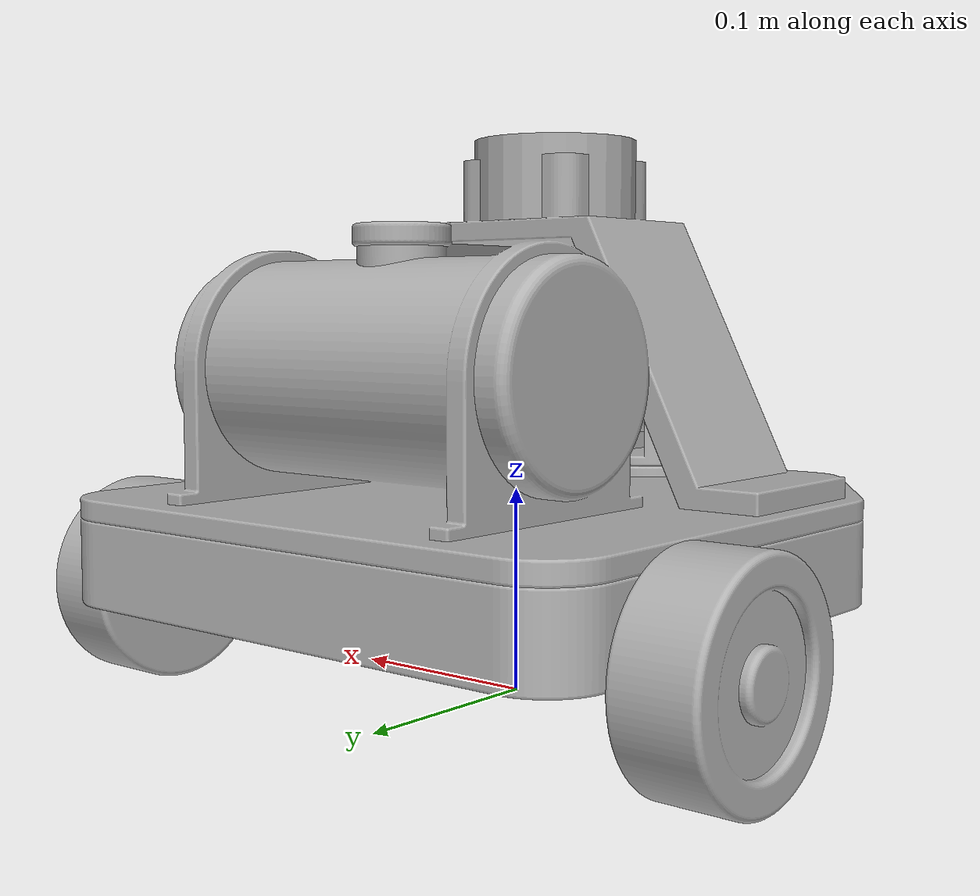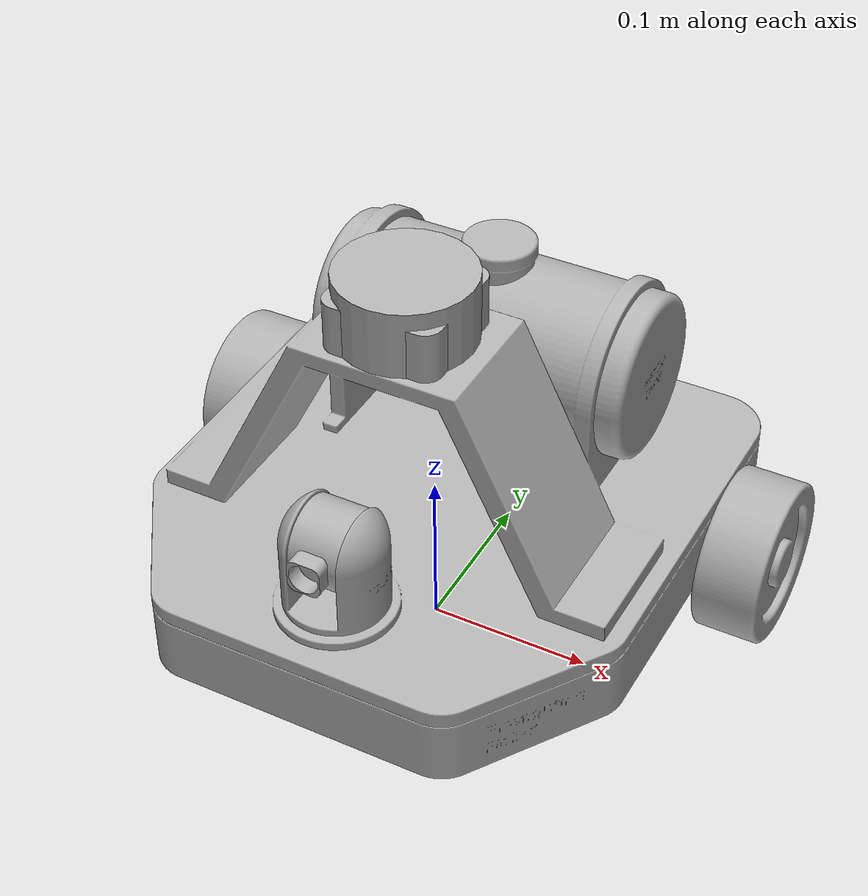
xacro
<?xml version="1.0" ?>
<robot name="final_assembly" xmlns:xacro="http://www.ros.org/wiki/xacro">

<xacro:include filename="$(find final_assembly_description)/urdf/materials.xacro" />
<xacro:include filename="$(find final_assembly_description)/urdf/final_assembly.trans" />
<xacro:include filename="$(find final_assembly_description)/urdf/final_assembly.gazebo" />

<link name="base_footprint"/>
<joint name="base_footprint_joint" type="fixed">
  <parent link="base_footprint"/>
  <child link="dummy"/>
  <origin xyz="0 0 0" rpy="0 0 0"/>
</joint>

<link name="dummy"/>
<joint name="dummy_joint" type="fixed">
  <parent link="dummy"/>
  <child link="base_link"/>
</joint>

<link name="base_link">
  <inertial>
    <origin xyz="3.4660443265257375e-07 0.02133699115978159 0.10448988049708854" rpy="0 0 0"/>
    <mass value="53.75875243208703"/>
    <inertia ixx="0.496438" iyy="0.443818" izz="0.674768" ixy="1e-06" iyz="-0.040611" ixz="0.0"/>
  </inertial>
  <visual>
    <origin xyz="0 0 0" rpy="0 0 0"/>
    <geometry>
      <mesh filename="package://final_assembly_description/meshes/base_link.stl" scale="0.001 0.001 0.001"/>
    </geometry>
    <material name="silver"/>
  </visual>
  <collision>
    <origin xyz="0 0 0" rpy="0 0 0"/>
    <geometry>
      <mesh filename="package://final_assembly_description/meshes/base_link.stl" scale="0.001 0.001 0.001"/>
    </geometry>
  </collision>
</link>

<link name="wheel_1">
  <inertial>
    <origin xyz="0.019047494333213788 -4.163336342344337e-17 -2.7755575615628914e-17" rpy="0 0 0"/>
    <mass value="2.3329933490707657"/>
    <inertia ixx="0.002974" iyy="0.001772" izz="0.001772" ixy="0.0" iyz="-0.0" ixz="0.0"/>
  </inertial>
  <visual>
    <origin xyz="-0.15 -0.085 -0.05" rpy="0 0 0"/>
    <geometry>
      <mesh filename="package://final_assembly_description/meshes/wheel_1_1.stl" scale="0.001 0.001 0.001"/>
    </geometry>
    <material name="silver"/>
  </visual>
  <collision>
    <origin xyz="-0.15 -0.085 -0.05" rpy="0 0 0"/>
    <geometry>
      <mesh filename="package://final_assembly_description/meshes/wheel_1_1.stl" scale="0.001 0.001 0.001"/>
    </geometry>
  </collision>
</link>

<link name="wheel_2">
  <inertial>
    <origin xyz="-0.019047494333213844 1.0130785099704553e-15 -2.7755575615628914e-17" rpy="0 0 0"/>
    <mass value="2.3329933490707657"/>
    <inertia ixx="0.002974" iyy="0.001772" izz="0.001772" ixy="-0.0" iyz="0.0" ixz="0.0"/>
  </inertial>
  <visual>
    <origin xyz="0.15 -0.085 -0.05" rpy="0 0 0"/>
    <geometry>
      <mesh filename="package://final_assembly_description/meshes/wheel_2_1.stl" scale="0.001 0.001 0.001"/>
    </geometry>
    <material name="silver"/>
  </visual>
  <collision>
    <origin xyz="0.15 -0.085 -0.05" rpy="0 0 0"/>
    <geometry>
      <mesh filename="package://final_assembly_description/meshes/wheel_2_1.stl" scale="0.001 0.001 0.001"/>
    </geometry>
  </collision>
</link>

<link name="caster_wheel_1">
  <inertial>
    <origin xyz="-1.7763568394002505e-17 0.0 8.673617379884035e-18" rpy="0 0 0"/>
    <mass value="0.032882003107573166"/>
    <inertia ixx="1e-06" iyy="1e-06" izz="1e-06" ixy="0.0" iyz="0.0" ixz="0.0"/>
  </inertial>
  <visual>
    <origin xyz="0.0 0.11 -0.01" rpy="0 0 0"/>
    <geometry>
      <mesh filename="package://final_assembly_description/meshes/caster_wheel_1_1.stl" scale="0.001 0.001 0.001"/>
    </geometry>
    <material name="silver"/>
  </visual>
  <collision>
    <origin xyz="0.0 0.11 -0.01" rpy="0 0 0"/>
    <geometry>
      <mesh filename="package://final_assembly_description/meshes/caster_wheel_1_1.stl" scale="0.001 0.001 0.001"/>
    </geometry>
  </collision>
</link>

<link name="nozzle_stand_1">
  <inertial>
    <origin xyz="1.6002695689499647e-06 -1.4619294012863104e-07 0.02513039158895812" rpy="0 0 0"/>
    <mass value="0.5512958900740178"/>
    <inertia ixx="0.000258" iyy="0.000397" izz="0.000308" ixy="0.0" iyz="0.0" ixz="0.0"/>
  </inertial>
  <visual>
    <origin xyz="7.3e-05 0.112028 -0.105" rpy="0 0 0"/>
    <geometry>
      <mesh filename="package://final_assembly_description/meshes/nozzle_stand_1_1.stl" scale="0.001 0.001 0.001"/>
    </geometry>
    <material name="silver"/>
  </visual>
  <collision>
    <origin xyz="7.3e-05 0.112028 -0.105" rpy="0 0 0"/>
    <geometry>
      <mesh filename="package://final_assembly_description/meshes/nozzle_stand_1_1.stl" scale="0.001 0.001 0.001"/>
    </geometry>
  </collision>
</link>

<link name="nozzle_1">
  <inertial>
    <origin xyz="-0.015000366311346575 -0.00039855919271747364 2.7755575615628914e-17" rpy="0 0 0"/>
    <mass value="0.43139411946496603"/>
    <inertia ixx="0.000128" iyy="9.4e-05" izz="9.8e-05" ixy="-0.0" iyz="0.0" ixz="0.0"/>
  </inertial>
  <visual>
    <origin xyz="-0.014927 0.112028 -0.145" rpy="0 0 0"/>
    <geometry>
      <mesh filename="package://final_assembly_description/meshes/nozzle_1_1.stl" scale="0.001 0.001 0.001"/>
    </geometry>
    <material name="silver"/>
  </visual>
  <collision>
    <origin xyz="-0.014927 0.112028 -0.145" rpy="0 0 0"/>
    <geometry>
      <mesh filename="package://final_assembly_description/meshes/nozzle_1_1.stl" scale="0.001 0.001 0.001"/>
    </geometry>
  </collision>
</link>

<joint name="Revolute 1" type="continuous">
  <origin xyz="0.15 0.085 0.05" rpy="0 0 0"/>
  <parent link="base_link"/>
  <child link="wheel_1"/>
  <axis xyz="1.0 0.0 0.0"/>
</joint>

<joint name="Revolute 2" type="continuous">
  <origin xyz="-0.15 0.085 0.05" rpy="0 0 0"/>
  <parent link="base_link"/>
  <child link="wheel_2"/>
  <axis xyz="1.0 0.0 0.0"/>
</joint>

<joint name="Ball 3" type="fixed">
  <origin xyz="0.0 -0.11 0.01" rpy="0 0 0"/>
  <parent link="base_link"/>
  <child link="caster_wheel_1"/>
</joint>

<joint name="Revolute 4" type="fixed">
  <origin xyz="-7.3e-05 -0.112028 0.105" rpy="0 0 0"/>
  <parent link="base_link"/>
  <child link="nozzle_stand_1"/>
</joint>

<joint name="Revolute 5" type="continuous">
  <origin xyz="0.015 0.0 0.04" rpy="0 0 0"/>
  <parent link="nozzle_stand_1"/>
  <child link="nozzle_1"/>
  <axis xyz="-1.0 0.0 0.0"/>
</joint>

<ros2_control name="GazeboSystem" type="system">
  <hardware>
    <plugin>gazebo_ros2_control/GazeboSystem</plugin>
  </hardware>
  <joint name="Revolute 5">
    <command_interface name="velocity">
      <param name="min">-1.0</param>
      <param name="max">1.0</param>
    </command_interface>
    <state_interface name="position"/>
    <state_interface name="velocity"/>
  </joint>
</ros2_control>

<!-- LiDAR Link -->
<link name="lidar_link">
  <inertial>
    <origin xyz="0 0 0" rpy="0 0 0"/>
    <mass value="0.1"/>
    <inertia ixx="0.0001" iyy="0.0001" izz="0.0001" ixy="0" iyz="0" ixz="0"/>
  </inertial>
  <visual>
    <origin xyz="0 0 0" rpy="0 0 0"/>
    <geometry>
      <cylinder radius="0.04" length="0.04"/>
    </geometry>
    <material name="silver"/>
  </visual>
  <collision>
    <origin xyz="0 0 0" rpy="0 0 0"/>
    <geometry>
      <cylinder radius="0.04" length="0.04"/>
    </geometry>
  </collision>
</link>

<joint name="lidar_joint" type="fixed">
  <!-- Place lidar at the top of the robot, facing forward (rotated 90 deg around Z to align X with Y) -->
  <origin xyz="0 -0.03 0.25" rpy="0 0 1.5708"/>
  <parent link="base_link"/>
  <child link="lidar_link"/>
</joint>

</robot>

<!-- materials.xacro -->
<robot name="final_assembly" xmlns:xacro="http://www.ros.org/wiki/xacro" >

<material name="silver">
  <color rgba="0.700 0.700 0.700 1.000"/>
</material>

</robot>

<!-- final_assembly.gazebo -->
<robot name="final_assembly" xmlns:xacro="http://www.ros.org/wiki/xacro" >

<xacro:property name="body_color" value="Gazebo/Silver" />

<gazebo>
  <!-- Differential Drive Plugin -->
  <plugin name="diff_drive" filename="libgazebo_ros_diff_drive.so">
    <ros>
      <namespace>/</namespace>
    </ros>
    <update_rate>30</update_rate>
    <!-- wheels -->
    <left_joint>Revolute 1</left_joint>
    <right_joint>Revolute 2</right_joint>
    <!-- kinematics -->
    <wheel_separation>0.30</wheel_separation>
    <wheel_diameter>0.10</wheel_diameter>
    <!-- limits -->
    <max_wheel_torque>20</max_wheel_torque>
    <max_wheel_acceleration>1.0</max_wheel_acceleration>
    <!-- output -->
    <publish_odom>true</publish_odom>
    <publish_odom_tf>true</publish_odom_tf>
    <publish_wheel_tf>true</publish_wheel_tf>
    <odometry_frame>odom</odometry_frame>
    <robot_base_frame>base_footprint</robot_base_frame>
  </plugin>

  <!-- Joint State Publisher for the Nozzle -->
  <plugin name="joint_state_publisher" filename="libgazebo_ros_joint_state_publisher.so">
    <ros>
      <namespace>/</namespace>
    </ros>
    <update_rate>30</update_rate>
    <joint_name>Revolute 4</joint_name>
    <joint_name>Revolute 5</joint_name>
  </plugin>

  <!-- ROS 2 Control -->
  <plugin name="gazebo_ros2_control" filename="libgazebo_ros2_control.so">
    <parameters>$(find final_assembly_description)/launch/controller.yaml</parameters>
  </plugin>
</gazebo>
<gazebo reference="base_link">
  <material>${body_color}</material>
  <mu1>0.2</mu1>
  <mu2>0.2</mu2>
  <selfCollide>false</selfCollide>
  <gravity>true</gravity>
</gazebo>

<gazebo reference="wheel_1">
  <material>${body_color}</material>
  <mu1>0.2</mu1>
  <mu2>0.2</mu2>
  <selfCollide>false</selfCollide>
</gazebo>

<gazebo reference="wheel_2">
  <material>${body_color}</material>
  <mu1>0.2</mu1>
  <mu2>0.2</mu2>
  <selfCollide>false</selfCollide>
</gazebo>

<gazebo reference="caster_wheel_1">
  <material>${body_color}</material>
  <mu1>0.2</mu1>
  <mu2>0.2</mu2>
  <selfCollide>false</selfCollide>
</gazebo>

<gazebo reference="nozzle_stand_1">
  <material>${body_color}</material>
  <mu1>0.2</mu1>
  <mu2>0.2</mu2>
  <selfCollide>false</selfCollide>
</gazebo>

<gazebo reference="nozzle_1">
  <material>${body_color}</material>
  <mu1>0.2</mu1>
  <mu2>0.2</mu2>
  <selfCollide>false</selfCollide>
</gazebo>

<gazebo reference="lidar_link">
  <material>Gazebo/Black</material>
  <sensor name="lidar" type="ray">
    <pose>0 0 0 0 0 0</pose>
    <always_on>true</always_on>
    <visualize>true</visualize>
    <update_rate>10</update_rate>
    <ray>
      <scan>
        <horizontal>
          <samples>360</samples>
          <resolution>1.0</resolution>
          <min_angle>-3.14</min_angle>
          <max_angle>3.14</max_angle>
        </horizontal>
      </scan>
      <range>
        <min>0.15</min>
        <max>8.0</max>
        <resolution>0.015</resolution>
      </range>
      <noise>
        <type>gaussian</type>
        <mean>0.0</mean>
        <stddev>0.01</stddev>
      </noise>
    </ray>
    <plugin name="scan" filename="libgazebo_ros_ray_sensor.so">
      <ros>
        <remapping>~/out:=scan</remapping>
      </ros>
      <output_type>sensor_msgs/LaserScan</output_type>
      <frame_name>lidar_link</frame_name>
    </plugin>
  </sensor>
</gazebo>

</robot>
